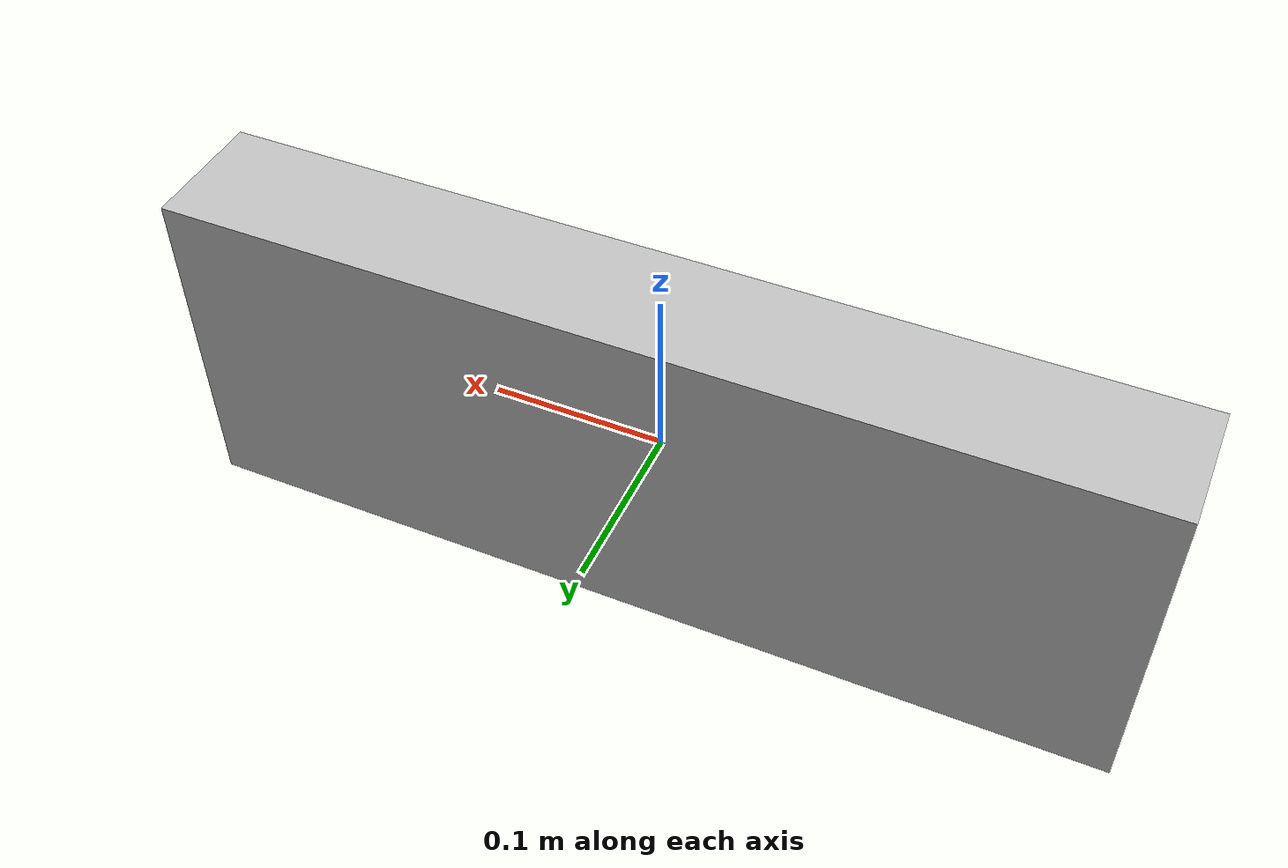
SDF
<?xml version="1.0" ?>
<sdf version="1.6">
  <model name="person_picture">
    <static>true</static>
    <link name="box">
      <pose>0 0 0 0 0 0</pose>
      <collision name="collision">
        <geometry>
          <box>
            <size>0.55 0.075 0.20</size>
          </box>
        </geometry>
      </collision>
      <visual name="visual">
        <geometry>
          <box>
            <size>0.55 0.075 0.20</size>
          </box>
        </geometry>
        <material>
          <script>
            <uri>model://person_picture/materials/scripts</uri>
            <uri>model://person_picture/materials/textures</uri>
            <name>person_picture</name>
          </script>
        </material>
      </visual>
    </link>
  </model>
</sdf>
